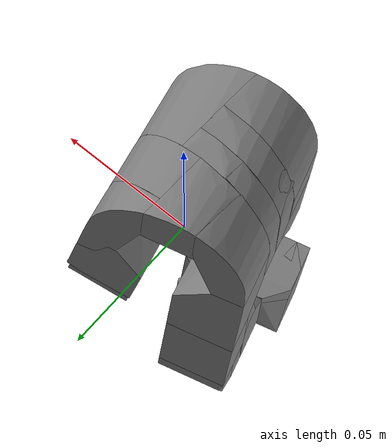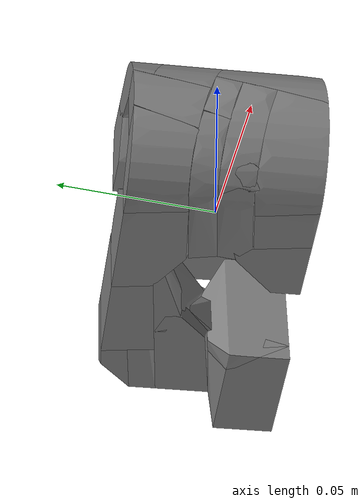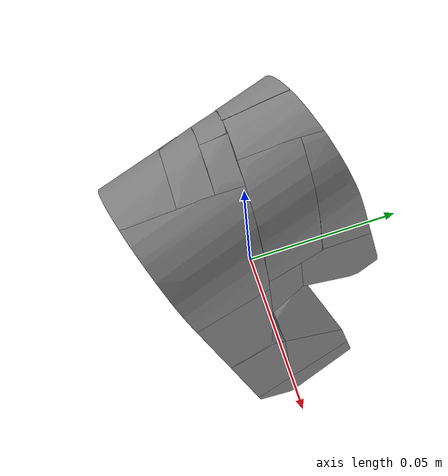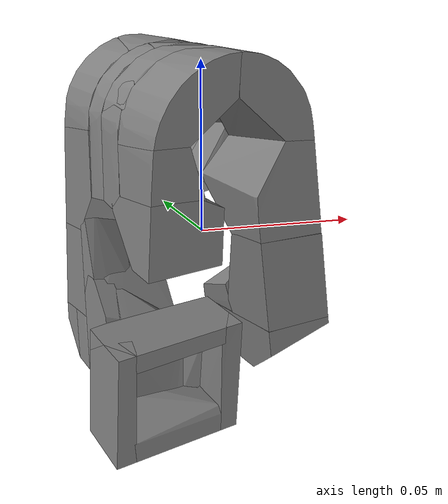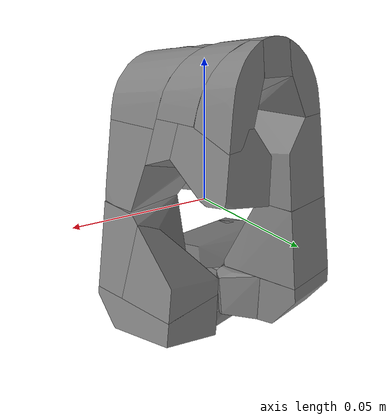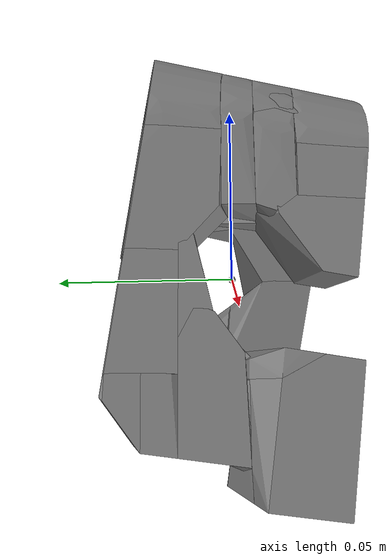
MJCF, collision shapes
<mujoco model="0">
  <default>
    <default class="visual">
      <geom group="2" type="mesh" contype="0" conaffinity="0" material="color_0" />
    </default>
    <default class="collision">
      <geom group="3" type="mesh" solimp="0.95 0.99 0.0001" solref="0.01 1" />
    </default>
  </default>
  <asset>
    <mesh file="0.obj" />
    <mesh file="0_collision_0.obj" />
    <mesh file="0_collision_1.obj" />
    <mesh file="0_collision_2.obj" />
    <mesh file="0_collision_3.obj" />
    <mesh file="0_collision_4.obj" />
    <mesh file="0_collision_5.obj" />
    <mesh file="0_collision_6.obj" />
    <mesh file="0_collision_7.obj" />
    <mesh file="0_collision_8.obj" />
    <mesh file="0_collision_9.obj" />
    <mesh file="0_collision_10.obj" />
    <mesh file="0_collision_11.obj" />
    <mesh file="0_collision_12.obj" />
    <mesh file="0_collision_13.obj" />
    <mesh file="0_collision_14.obj" />
    <mesh file="0_collision_15.obj" />
    <mesh file="0_collision_16.obj" />
    <mesh file="0_collision_17.obj" />
    <mesh file="0_collision_18.obj" />
    <mesh file="0_collision_19.obj" />
    <mesh file="0_collision_20.obj" />
    <mesh file="0_collision_21.obj" />
    <mesh file="0_collision_22.obj" />
    <mesh file="0_collision_23.obj" />
    <mesh file="0_collision_24.obj" />
    <mesh file="0_collision_25.obj" />
    <mesh file="0_collision_26.obj" />
    <mesh file="0_collision_27.obj" />
    <mesh file="0_collision_28.obj" />
    <mesh file="0_collision_29.obj" />
    <mesh file="0_collision_30.obj" />
    <mesh file="0_collision_31.obj" />
    <material name='color_0' specular='0.5' shininess='0.25'
      rgba='0.462745098 0.717647059 0.698039216 1.0' />
  </asset>
  <worldbody>
    <body name="0">
      <site name="centroid" euler="90 0 225" size="0.001 0.001 0.001" />
      <geom name="main_geom" mesh="0" class="visual" />
      <geom mesh="0_collision_0" class="collision" />
      <geom mesh="0_collision_1" class="collision" />
      <geom mesh="0_collision_2" class="collision" />
      <geom mesh="0_collision_3" class="collision" />
      <geom mesh="0_collision_4" class="collision" />
      <geom mesh="0_collision_5" class="collision" />
      <geom mesh="0_collision_6" class="collision" />
      <geom mesh="0_collision_7" class="collision" />
      <geom mesh="0_collision_8" class="collision" />
      <geom mesh="0_collision_9" class="collision" />
      <geom mesh="0_collision_10" class="collision" />
      <geom mesh="0_collision_11" class="collision" />
      <geom mesh="0_collision_12" class="collision" />
      <geom mesh="0_collision_13" class="collision" />
      <geom mesh="0_collision_14" class="collision" />
      <geom mesh="0_collision_15" class="collision" />
      <geom mesh="0_collision_16" class="collision" />
      <geom mesh="0_collision_17" class="collision" />
      <geom mesh="0_collision_18" class="collision" />
      <geom mesh="0_collision_19" class="collision" />
      <geom mesh="0_collision_20" class="collision" />
      <geom mesh="0_collision_21" class="collision" />
      <geom mesh="0_collision_22" class="collision" />
      <geom mesh="0_collision_23" class="collision" />
      <geom mesh="0_collision_24" class="collision" />
      <geom mesh="0_collision_25" class="collision" />
      <geom mesh="0_collision_26" class="collision" />
      <geom mesh="0_collision_27" class="collision" />
      <geom mesh="0_collision_28" class="collision" />
      <geom mesh="0_collision_29" class="collision" />
      <geom mesh="0_collision_30" class="collision" />
      <geom mesh="0_collision_31" class="collision" />
    </body>
  </worldbody>
</mujoco>
